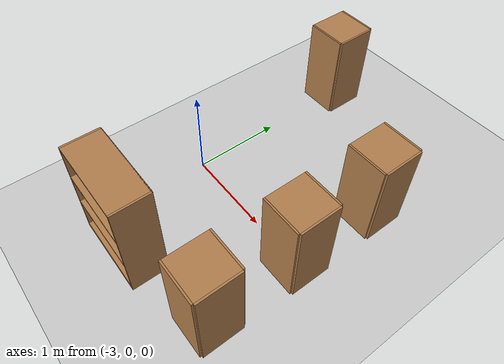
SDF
<sdf version="1.4">
 <world name="default">
  <light name="sun" type="directional">
   <pose>0 0 10 0 -0 0</pose>
   <diffuse>0.8 0.8 0.8 1</diffuse>
   <specular>0.2 0.2 0.2 1</specular>
   <attenuation>
    <range>1000</range>
    <constant>0.9</constant>
    <linear>0.01</linear>
    <quadratic>0.001</quadratic>
   </attenuation>
   <direction>-0.5 0.1 -0.9</direction>
  </light>
  <model name="ground_plane">
   <static>1</static>
   <link name="link">
    <collision name="collision">
     <geometry><plane><normal>0 0 1</normal><size>100 100</size></plane></geometry>
     <surface><friction><ode><mu>100</mu><mu2>50</mu2></ode></friction></surface>
    </collision>
    <visual name="visual">
     <cast_shadows>0</cast_shadows>
     <geometry><plane><normal>0 0 1</normal><size>100 100</size></plane></geometry>
     <material>
      <script><uri>file://media/materials/scripts/gazebo.material</uri><name>Gazebo/Grey</name></script>
     </material>
    </visual>
    <velocity_decay><linear>0</linear><angular>0</angular></velocity_decay>
   </link>
  </model>
  <physics type="ode">
   <max_step_size>0.001</max_step_size>
   <real_time_factor>1</real_time_factor>
   <real_time_update_rate>1000</real_time_update_rate>
   <gravity>0 0 -9.8</gravity>
  </physics>
  <scene><ambient>0.4 0.4 0.4 1</ambient><background>0.7 0.7 0.7 1</background><shadows>1</shadows></scene>
  <model name="cabinet">
   <static>1</static>
   <link name="cabinet_bottom_plate">
    <inertial>
     <pose>0 0 -1 0 -0 0</pose>
     <inertia><ixx>2.05</ixx><ixy>0</ixy><ixz>0</ixz><iyy>2.05</iyy><iyz>0</iyz><izz>2.05</izz></inertia>
     <mass>25</mass>
    </inertial>
    <collision name="cabinet_bottom_plate_geom">
     <pose>0 0 0.01 0 -0 0</pose>
     <geometry><box><size>0.45 0.45 0.02</size></box></geometry>
    </collision>
    <visual name="cabinet_bottom_plate_geom_visual">
     <pose>0 0 0.01 0 -0 0</pose>
     <geometry><box><size>0.45 0.45 0.02</size></box></geometry>
     <material>
      <script><uri>file://media/materials/scripts/gazebo.material</uri><name>Gazebo/Wood</name></script>
     </material>
    </visual>
    <collision name="cabinet_bottom_plate_geom_cabinet_back_plate">
     <pose>0.235 0 0.51 0 -0 0</pose>
     <geometry><box><size>0.02 0.45 1.02</size></box></geometry>
    </collision>
    <visual name="cabinet_bottom_plate_geom_cabinet_back_plate_visual">
     <pose>0.235 0 0.51 0 -0 0</pose>
     <geometry><box><size>0.02 0.45 1.02</size></box></geometry>
     <material>
      <script><uri>file://media/materials/scripts/gazebo.material</uri><name>Gazebo/Wood</name></script>
     </material>
    </visual>
    <collision name="cabinet_bottom_plate_geom_cabinet_left_plate">
     <pose>0 0.235 0.51 0 -0 0</pose>
     <geometry><box><size>0.45 0.02 1.02</size></box></geometry>
    </collision>
    <visual name="cabinet_bottom_plate_geom_cabinet_left_plate_visual">
     <pose>0 0.235 0.51 0 -0 0</pose>
     <geometry><box><size>0.45 0.02 1.02</size></box></geometry>
     <material>
      <script><uri>file://media/materials/scripts/gazebo.material</uri><name>Gazebo/Wood</name></script>
     </material>
    </visual>
    <collision name="cabinet_bottom_plate_geom_cabinet_middle_plate">
     <pose>0 0 0.51 0 -0 0</pose>
     <geometry><box><size>0.45 0.45 0.02</size></box></geometry>
    </collision>
    <visual name="cabinet_bottom_plate_geom_cabinet_middle_plate_visual">
     <pose>0 0 0.51 0 -0 0</pose>
     <geometry><box><size>0.45 0.45 0.02</size></box></geometry>
     <material>
      <script><uri>file://media/materials/scripts/gazebo.material</uri><name>Gazebo/Wood</name></script>
     </material>
    </visual>
    <collision name="cabinet_bottom_plate_geom_cabinet_right_plate">
     <pose>0 -0.235 0.51 0 -0 0</pose>
     <geometry><box><size>0.45 0.02 1.02</size></box></geometry>
    </collision>
    <visual name="cabinet_bottom_plate_geom_cabinet_right_plate_visual">
     <pose>0 -0.235 0.51 0 -0 0</pose>
     <geometry><box><size>0.45 0.02 1.02</size></box></geometry>
     <material>
      <script><uri>file://media/materials/scripts/gazebo.material</uri><name>Gazebo/Wood</name></script>
     </material>
    </visual>
    <collision name="cabinet_bottom_plate_geom_cabinet_top_plate">
     <pose>0 0 1.01 0 -0 0</pose>
     <geometry><box><size>0.45 0.45 0.02</size></box></geometry>
    </collision>
    <visual name="cabinet_bottom_plate_geom_cabinet_top_plate_visual">
     <pose>0 0 1.01 0 -0 0</pose>
     <geometry><box><size>0.45 0.45 0.02</size></box></geometry>
     <material>
      <script><uri>file://media/materials/scripts/gazebo.material</uri><name>Gazebo/Wood</name></script>
     </material>
    </visual>
    <velocity_decay><linear>0</linear><angular>0</angular></velocity_decay>
   </link>
   <pose>-1.4129 0 0 0 -0 0</pose>
  </model>
  <model name="bookshelf">
   <static>1</static>
   <link name="link">
    <inertial><mass>1</mass></inertial>
    <collision name="back">
     <pose>0 0.005 0.6 0 -0 0</pose>
     <geometry><box><size>0.9 0.01 1.2</size></box></geometry>
    </collision>
    <visual name="visual1">
     <pose>0 0.005 0.6 0 -0 0</pose>
     <geometry><box><size>0.9 0.01 1.2</size></box></geometry>
     <material>
      <script><uri>file://media/materials/scripts/gazebo.material</uri><name>Gazebo/Wood</name></script>
     </material>
    </visual>
    <collision name="left_side">
     <pose>0.45 -0.195 0.6 0 -0 0</pose>
     <geometry><box><size>0.02 0.4 1.2</size></box></geometry>
    </collision>
    <visual name="visual2">
     <pose>0.45 -0.195 0.6 0 -0 0</pose>
     <geometry><box><size>0.02 0.4 1.2</size></box></geometry>
     <material>
      <script><uri>file://media/materials/scripts/gazebo.material</uri><name>Gazebo/Wood</name></script>
     </material>
    </visual>
    <collision name="right_side">
     <pose>-0.45 -0.195 0.6 0 -0 0</pose>
     <geometry><box><size>0.02 0.4 1.2</size></box></geometry>
    </collision>
    <visual name="visual3">
     <pose>-0.45 -0.195 0.6 0 -0 0</pose>
     <geometry><box><size>0.02 0.4 1.2</size></box></geometry>
     <material>
      <script><uri>file://media/materials/scripts/gazebo.material</uri><name>Gazebo/Wood</name></script>
     </material>
    </visual>
    <collision name="bottom">
     <pose>0 -0.195 0.03 0 -0 0</pose>
     <geometry><box><size>0.88 0.4 0.06</size></box></geometry>
    </collision>
    <visual name="visual4">
     <pose>0 -0.195 0.03 0 -0 0</pose>
     <geometry><box><size>0.88 0.4 0.06</size></box></geometry>
     <material>
      <script><uri>file://media/materials/scripts/gazebo.material</uri><name>Gazebo/Wood</name></script>
     </material>
    </visual>
    <collision name="top">
     <pose>0 -0.195 1.19 0 -0 0</pose>
     <geometry><box><size>0.88 0.4 0.02</size></box></geometry>
    </collision>
    <visual name="visual5">
     <pose>0 -0.195 1.19 0 -0 0</pose>
     <geometry><box><size>0.88 0.4 0.02</size></box></geometry>
     <material>
      <script><uri>file://media/materials/scripts/gazebo.material</uri><name>Gazebo/Wood</name></script>
     </material>
    </visual>
    <collision name="low_shelf">
     <pose>0 -0.195 0.43 0 -0 0</pose>
     <geometry><box><size>0.88 0.4 0.02</size></box></geometry>
    </collision>
    <visual name="visual6">
     <pose>0 -0.195 0.43 0 -0 0</pose>
     <geometry><box><size>0.88 0.4 0.02</size></box></geometry>
     <material>
      <script><uri>file://media/materials/scripts/gazebo.material</uri><name>Gazebo/Wood</name></script>
     </material>
    </visual>
    <collision name="high_shelf">
     <pose>0 -0.195 0.8 0 -0 0</pose>
     <geometry><box><size>0.88 0.4 0.02</size></box></geometry>
    </collision>
    <visual name="visual7">
     <pose>0 -0.195 0.8 0 -0 0</pose>
     <geometry><box><size>0.88 0.4 0.02</size></box></geometry>
     <material>
      <script><uri>file://media/materials/scripts/gazebo.material</uri><name>Gazebo/Wood</name></script>
     </material>
    </visual>
    <velocity_decay><linear>0</linear><angular>0</angular></velocity_decay>
   </link>
   <pose>-2.57305 -1 0 0 -0 0</pose>
  </model>
  <model name="cabinet_0">
   <static>1</static>
   <link name="cabinet_bottom_plate">
    <inertial>
     <pose>0 0 -1 0 -0 0</pose>
     <inertia><ixx>2.05</ixx><ixy>0</ixy><ixz>0</ixz><iyy>2.05</iyy><iyz>0</iyz><izz>2.05</izz></inertia>
     <mass>25</mass>
    </inertial>
    <collision name="cabinet_bottom_plate_geom">
     <pose>0 0 0.01 0 -0 0</pose>
     <geometry><box><size>0.45 0.45 0.02</size></box></geometry>
    </collision>
    <visual name="cabinet_bottom_plate_geom_visual">
     <pose>0 0 0.01 0 -0 0</pose>
     <geometry><box><size>0.45 0.45 0.02</size></box></geometry>
     <material>
      <script><uri>file://media/materials/scripts/gazebo.material</uri><name>Gazebo/Wood</name></script>
     </material>
    </visual>
    <collision name="cabinet_bottom_plate_geom_cabinet_back_plate">
     <pose>0.235 0 0.51 0 -0 0</pose>
     <geometry><box><size>0.02 0.45 1.02</size></box></geometry>
    </collision>
    <visual name="cabinet_bottom_plate_geom_cabinet_back_plate_visual">
     <pose>0.235 0 0.51 0 -0 0</pose>
     <geometry><box><size>0.02 0.45 1.02</size></box></geometry>
     <material>
      <script><uri>file://media/materials/scripts/gazebo.material</uri><name>Gazebo/Wood</name></script>
     </material>
    </visual>
    <collision name="cabinet_bottom_plate_geom_cabinet_left_plate">
     <pose>0 0.235 0.51 0 -0 0</pose>
     <geometry><box><size>0.45 0.02 1.02</size></box></geometry>
    </collision>
    <visual name="cabinet_bottom_plate_geom_cabinet_left_plate_visual">
     <pose>0 0.235 0.51 0 -0 0</pose>
     <geometry><box><size>0.45 0.02 1.02</size></box></geometry>
     <material>
      <script><uri>file://media/materials/scripts/gazebo.material</uri><name>Gazebo/Wood</name></script>
     </material>
    </visual>
    <collision name="cabinet_bottom_plate_geom_cabinet_middle_plate">
     <pose>0 0 0.51 0 -0 0</pose>
     <geometry><box><size>0.45 0.45 0.02</size></box></geometry>
    </collision>
    <visual name="cabinet_bottom_plate_geom_cabinet_middle_plate_visual">
     <pose>0 0 0.51 0 -0 0</pose>
     <geometry><box><size>0.45 0.45 0.02</size></box></geometry>
     <material>
      <script><uri>file://media/materials/scripts/gazebo.material</uri><name>Gazebo/Wood</name></script>
     </material>
    </visual>
    <collision name="cabinet_bottom_plate_geom_cabinet_right_plate">
     <pose>0 -0.235 0.51 0 -0 0</pose>
     <geometry><box><size>0.45 0.02 1.02</size></box></geometry>
    </collision>
    <visual name="cabinet_bottom_plate_geom_cabinet_right_plate_visual">
     <pose>0 -0.235 0.51 0 -0 0</pose>
     <geometry><box><size>0.45 0.02 1.02</size></box></geometry>
     <material>
      <script><uri>file://media/materials/scripts/gazebo.material</uri><name>Gazebo/Wood</name></script>
     </material>
    </visual>
    <collision name="cabinet_bottom_plate_geom_cabinet_top_plate">
     <pose>0 0 1.01 0 -0 0</pose>
     <geometry><box><size>0.45 0.45 0.02</size></box></geometry>
    </collision>
    <visual name="cabinet_bottom_plate_geom_cabinet_top_plate_visual">
     <pose>0 0 1.01 0 -0 0</pose>
     <geometry><box><size>0.45 0.45 0.02</size></box></geometry>
     <material>
      <script><uri>file://media/materials/scripts/gazebo.material</uri><name>Gazebo/Wood</name></script>
     </material>
    </visual>
    <velocity_decay><linear>0</linear><angular>0</angular></velocity_decay>
   </link>
   <pose>-3 2 0 0 -0 0</pose>
  </model>
  <model name="cabinet_1">
   <static>1</static>
   <link name="cabinet_bottom_plate">
    <inertial>
     <pose>0 0 -1 0 -0 0</pose>
     <inertia><ixx>2.05</ixx><ixy>0</ixy><ixz>0</ixz><iyy>2.05</iyy><iyz>0</iyz><izz>2.05</izz></inertia>
     <mass>25</mass>
    </inertial>
    <collision name="cabinet_bottom_plate_geom">
     <pose>0 0 0.01 0 -0 0</pose>
     <geometry><box><size>0.45 0.45 0.02</size></box></geometry>
    </collision>
    <visual name="cabinet_bottom_plate_geom_visual">
     <pose>0 0 0.01 0 -0 0</pose>
     <geometry><box><size>0.45 0.45 0.02</size></box></geometry>
     <material>
      <script><uri>file://media/materials/scripts/gazebo.material</uri><name>Gazebo/Wood</name></script>
     </material>
    </visual>
    <collision name="cabinet_bottom_plate_geom_cabinet_back_plate">
     <pose>0.235 0 0.51 0 -0 0</pose>
     <geometry><box><size>0.02 0.45 1.02</size></box></geometry>
    </collision>
    <visual name="cabinet_bottom_plate_geom_cabinet_back_plate_visual">
     <pose>0.235 0 0.51 0 -0 0</pose>
     <geometry><box><size>0.02 0.45 1.02</size></box></geometry>
     <material>
      <script><uri>file://media/materials/scripts/gazebo.material</uri><name>Gazebo/Wood</name></script>
     </material>
    </visual>
    <collision name="cabinet_bottom_plate_geom_cabinet_left_plate">
     <pose>0 0.235 0.51 0 -0 0</pose>
     <geometry><box><size>0.45 0.02 1.02</size></box></geometry>
    </collision>
    <visual name="cabinet_bottom_plate_geom_cabinet_left_plate_visual">
     <pose>0 0.235 0.51 0 -0 0</pose>
     <geometry><box><size>0.45 0.02 1.02</size></box></geometry>
     <material>
      <script><uri>file://media/materials/scripts/gazebo.material</uri><name>Gazebo/Wood</name></script>
     </material>
    </visual>
    <collision name="cabinet_bottom_plate_geom_cabinet_middle_plate">
     <pose>0 0 0.51 0 -0 0</pose>
     <geometry><box><size>0.45 0.45 0.02</size></box></geometry>
    </collision>
    <visual name="cabinet_bottom_plate_geom_cabinet_middle_plate_visual">
     <pose>0 0 0.51 0 -0 0</pose>
     <geometry><box><size>0.45 0.45 0.02</size></box></geometry>
     <material>
      <script><uri>file://media/materials/scripts/gazebo.material</uri><name>Gazebo/Wood</name></script>
     </material>
    </visual>
    <collision name="cabinet_bottom_plate_geom_cabinet_right_plate">
     <pose>0 -0.235 0.51 0 -0 0</pose>
     <geometry><box><size>0.45 0.02 1.02</size></box></geometry>
    </collision>
    <visual name="cabinet_bottom_plate_geom_cabinet_right_plate_visual">
     <pose>0 -0.235 0.51 0 -0 0</pose>
     <geometry><box><size>0.45 0.02 1.02</size></box></geometry>
     <material>
      <script><uri>file://media/materials/scripts/gazebo.material</uri><name>Gazebo/Wood</name></script>
     </material>
    </visual>
    <collision name="cabinet_bottom_plate_geom_cabinet_top_plate">
     <pose>0 0 1.01 0 -0 0</pose>
     <geometry><box><size>0.45 0.45 0.02</size></box></geometry>
    </collision>
    <visual name="cabinet_bottom_plate_geom_cabinet_top_plate_visual">
     <pose>0 0 1.01 0 -0 0</pose>
     <geometry><box><size>0.45 0.45 0.02</size></box></geometry>
     <material>
      <script><uri>file://media/materials/scripts/gazebo.material</uri><name>Gazebo/Wood</name></script>
     </material>
    </visual>
    <velocity_decay><linear>0</linear><angular>0</angular></velocity_decay>
   </link>
   <pose>-1.41527 1 0 0 -0 0</pose>
  </model>
  <model name="cabinet_2">
   <static>1</static>
   <link name="cabinet_bottom_plate">
    <inertial>
     <pose>0 0 -1 0 -0 0</pose>
     <inertia><ixx>2.05</ixx><ixy>0</ixy><ixz>0</ixz><iyy>2.05</iyy><iyz>0</iyz><izz>2.05</izz></inertia>
     <mass>25</mass>
    </inertial>
    <collision name="cabinet_bottom_plate_geom">
     <pose>0 0 0.01 0 -0 0</pose>
     <geometry><box><size>0.45 0.45 0.02</size></box></geometry>
    </collision>
    <visual name="cabinet_bottom_plate_geom_visual">
     <pose>0 0 0.01 0 -0 0</pose>
     <geometry><box><size>0.45 0.45 0.02</size></box></geometry>
     <material>
      <script><uri>file://media/materials/scripts/gazebo.material</uri><name>Gazebo/Wood</name></script>
     </material>
    </visual>
    <collision name="cabinet_bottom_plate_geom_cabinet_back_plate">
     <pose>0.235 0 0.51 0 -0 0</pose>
     <geometry><box><size>0.02 0.45 1.02</size></box></geometry>
    </collision>
    <visual name="cabinet_bottom_plate_geom_cabinet_back_plate_visual">
     <pose>0.235 0 0.51 0 -0 0</pose>
     <geometry><box><size>0.02 0.45 1.02</size></box></geometry>
     <material>
      <script><uri>file://media/materials/scripts/gazebo.material</uri><name>Gazebo/Wood</name></script>
     </material>
    </visual>
    <collision name="cabinet_bottom_plate_geom_cabinet_left_plate">
     <pose>0 0.235 0.51 0 -0 0</pose>
     <geometry><box><size>0.45 0.02 1.02</size></box></geometry>
    </collision>
    <visual name="cabinet_bottom_plate_geom_cabinet_left_plate_visual">
     <pose>0 0.235 0.51 0 -0 0</pose>
     <geometry><box><size>0.45 0.02 1.02</size></box></geometry>
     <material>
      <script><uri>file://media/materials/scripts/gazebo.material</uri><name>Gazebo/Wood</name></script>
     </material>
    </visual>
    <collision name="cabinet_bottom_plate_geom_cabinet_middle_plate">
     <pose>0 0 0.51 0 -0 0</pose>
     <geometry><box><size>0.45 0.45 0.02</size></box></geometry>
    </collision>
    <visual name="cabinet_bottom_plate_geom_cabinet_middle_plate_visual">
     <pose>0 0 0.51 0 -0 0</pose>
     <geometry><box><size>0.45 0.45 0.02</size></box></geometry>
     <material>
      <script><uri>file://media/materials/scripts/gazebo.material</uri><name>Gazebo/Wood</name></script>
     </material>
    </visual>
    <collision name="cabinet_bottom_plate_geom_cabinet_right_plate">
     <pose>0 -0.235 0.51 0 -0 0</pose>
     <geometry><box><size>0.45 0.02 1.02</size></box></geometry>
    </collision>
    <visual name="cabinet_bottom_plate_geom_cabinet_right_plate_visual">
     <pose>0 -0.235 0.51 0 -0 0</pose>
     <geometry><box><size>0.45 0.02 1.02</size></box></geometry>
     <material>
      <script><uri>file://media/materials/scripts/gazebo.material</uri><name>Gazebo/Wood</name></script>
     </material>
    </visual>
    <collision name="cabinet_bottom_plate_geom_cabinet_top_plate">
     <pose>0 0 1.01 0 -0 0</pose>
     <geometry><box><size>0.45 0.45 0.02</size></box></geometry>
    </collision>
    <visual name="cabinet_bottom_plate_geom_cabinet_top_plate_visual">
     <pose>0 0 1.01 0 -0 0</pose>
     <geometry><box><size>0.45 0.45 0.02</size></box></geometry>
     <material>
      <script><uri>file://media/materials/scripts/gazebo.material</uri><name>Gazebo/Wood</name></script>
     </material>
    </visual>
    <velocity_decay><linear>0</linear><angular>0</angular></velocity_decay>
   </link>
   <pose>-1.43253 -1 0 0 -0 0</pose>
  </model>
 </world>
</sdf>
